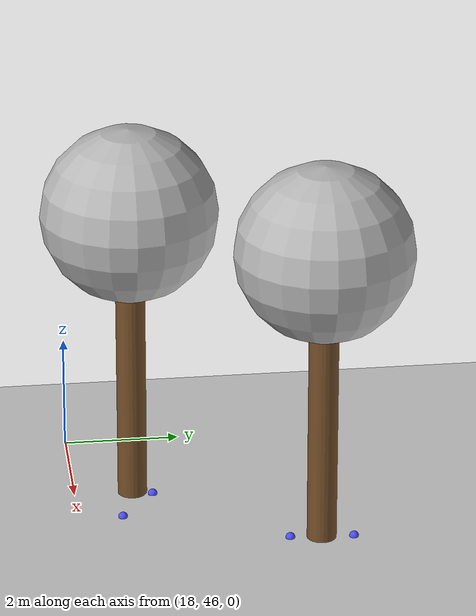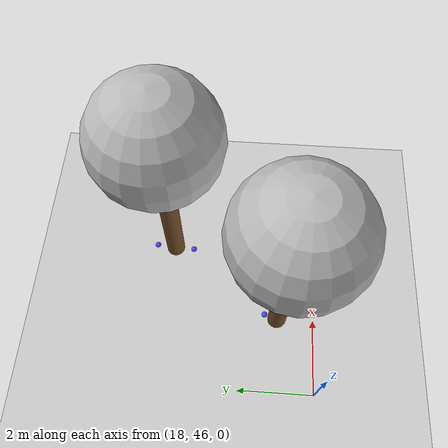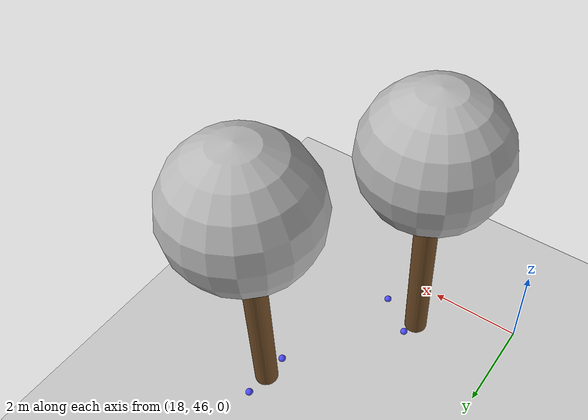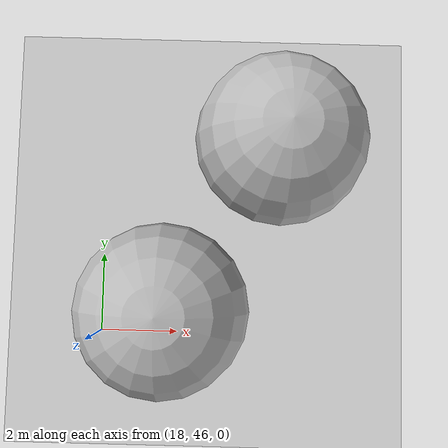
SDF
<sdf version="1.7">
 <world name="default">
  <model name="ground_plane">
   <static>1</static>
   <link name="link">
    <collision name="collision">
     <geometry><plane><normal>0 0 1</normal><size>100 100</size></plane></geometry>
     <surface>
      <contact><collide_bitmask>65535</collide_bitmask></contact>
      <friction><ode><mu>100</mu><mu2>50</mu2></ode></friction>
     </surface>
    </collision>
    <visual name="visual">
     <cast_shadows>0</cast_shadows>
     <geometry><plane><normal>0 0 1</normal><size>100 100</size></plane></geometry>
     <material>
      <script><uri>file://media/materials/scripts/gazebo.material</uri><name>Gazebo/Grey</name></script>
     </material>
    </visual>
   </link>
  </model>
  <model name="tree_simple_0">
   <static>1</static>
   <link name="link">
    <pose>0 0 0.1 0 -0 0</pose>
    <inertial>
     <mass>666</mass>
     <inertia>
      <ixx>0.0861167</ixx>
      <ixy>0</ixy>
      <ixz>0</ixz>
      <iyy>0.0861167</iyy>
      <iyz>0</iyz>
      <izz>0.0861167</izz>
     </inertia>
    </inertial>
    <collision name="collision_trunk">
     <pose>0 0 2 0 -0 0</pose>
     <geometry><cylinder><radius>0.25</radius><length>4</length></cylinder></geometry>
     <surface>
      <contact>
       <poissons_ratio>0.347</poissons_ratio>
       <elastic_modulus>8.8e+09</elastic_modulus>
       <ode><kp>100000</kp><kd>100</kd><max_vel>100</max_vel><min_depth>0.001</min_depth></ode>
      </contact>
      <friction>
       <torsional>
        <coefficient>1</coefficient>
        <use_patch_radius>0</use_patch_radius>
        <surface_radius>0.01</surface_radius>
       </torsional>
      </friction>
     </surface>
    </collision>
    <collision name="collision_treetop">
     <pose>0 0 5.2 0 -0 0</pose>
     <geometry><sphere><radius>1.5</radius></sphere></geometry>
     <surface>
      <contact>
       <poissons_ratio>0.347</poissons_ratio>
       <elastic_modulus>8.8e+09</elastic_modulus>
       <ode><kp>100000</kp><kd>100</kd><max_vel>100</max_vel><min_depth>0.001</min_depth></ode>
      </contact>
      <friction>
       <torsional>
        <coefficient>1</coefficient>
        <use_patch_radius>0</use_patch_radius>
        <surface_radius>0.01</surface_radius>
       </torsional>
      </friction>
     </surface>
    </collision>
    <visual name="trunk">
     <pose>0 0 2 0 -0 0</pose>
     <geometry><cylinder><radius>0.25</radius><length>4</length></cylinder></geometry>
     <material>
      <script>
       <uri>model://tree_simple/scripts</uri>
       <uri>model://tree_simple/materials/textures</uri>
       <name>TreeSimple/Trunk</name>
      </script>
     </material>
    </visual>
    <visual name="treetop">
     <pose>0 0 5.2 0 -0 0</pose>
     <geometry><sphere><radius>1.5</radius></sphere></geometry>
     <material>
      <script>
       <uri>model://tree_simple/scripts</uri>
       <uri>model://tree_simple/materials/textures</uri>
       <name>TreeSimple/Treetop</name>
      </script>
     </material>
    </visual>
   </link>
   <pose>22 50 -0.1 0 -0 0</pose>
  </model>
  <model name="tree_simple_2">
   <static>1</static>
   <link name="link">
    <pose>0 0 0.1 0 -0 0</pose>
    <inertial>
     <mass>666</mass>
     <inertia>
      <ixx>0.0861167</ixx>
      <ixy>0</ixy>
      <ixz>0</ixz>
      <iyy>0.0861167</iyy>
      <iyz>0</iyz>
      <izz>0.0861167</izz>
     </inertia>
    </inertial>
    <collision name="collision_trunk">
     <pose>0 0 2 0 -0 0</pose>
     <geometry><cylinder><radius>0.25</radius><length>4</length></cylinder></geometry>
     <surface>
      <contact>
       <poissons_ratio>0.347</poissons_ratio>
       <elastic_modulus>8.8e+09</elastic_modulus>
       <ode><kp>100000</kp><kd>100</kd><max_vel>100</max_vel><min_depth>0.001</min_depth></ode>
      </contact>
      <friction>
       <torsional>
        <coefficient>1</coefficient>
        <use_patch_radius>0</use_patch_radius>
        <surface_radius>0.01</surface_radius>
       </torsional>
      </friction>
     </surface>
    </collision>
    <collision name="collision_treetop">
     <pose>0 0 5.2 0 -0 0</pose>
     <geometry><sphere><radius>1.5</radius></sphere></geometry>
     <surface>
      <contact>
       <poissons_ratio>0.347</poissons_ratio>
       <elastic_modulus>8.8e+09</elastic_modulus>
       <ode><kp>100000</kp><kd>100</kd><max_vel>100</max_vel><min_depth>0.001</min_depth></ode>
      </contact>
      <friction>
       <torsional>
        <coefficient>1</coefficient>
        <use_patch_radius>0</use_patch_radius>
        <surface_radius>0.01</surface_radius>
       </torsional>
      </friction>
     </surface>
    </collision>
    <visual name="trunk">
     <pose>0 0 2 0 -0 0</pose>
     <geometry><cylinder><radius>0.25</radius><length>4</length></cylinder></geometry>
     <material>
      <script>
       <uri>model://tree_simple/scripts</uri>
       <uri>model://tree_simple/materials/textures</uri>
       <name>TreeSimple/Trunk</name>
      </script>
     </material>
    </visual>
    <visual name="treetop">
     <pose>0 0 5.2 0 -0 0</pose>
     <geometry><sphere><radius>1.5</radius></sphere></geometry>
     <material>
      <script>
       <uri>model://tree_simple/scripts</uri>
       <uri>model://tree_simple/materials/textures</uri>
       <name>TreeSimple/Treetop</name>
      </script>
     </material>
    </visual>
   </link>
   <pose>20 47 -0.1 0 -0 0</pose>
  </model>
  <model name="seed_blue_0">
   <link name="link">
    <inertial>
     <mass>1</mass>
     <inertia><ixx>0.1</ixx><ixy>0</ixy><ixz>0</ixz><iyy>0.1</iyy><iyz>0</iyz><izz>0.1</izz></inertia>
    </inertial>
    <visual name="visual">
     <geometry><sphere><radius>0.08</radius></sphere></geometry>
     <material>
      <script><name>Gazebo/Grey</name><uri>file://media/materials/scripts/gazebo.material</uri></script>
      <shader type="pixel"><normal_map>__default__</normal_map></shader>
      <ambient>0.3 0.3 1 1</ambient>
      <diffuse>0.7 0.7 0.7 1</diffuse>
      <specular>0.01 0.01 0.01 1</specular>
      <emissive>0 0 0 1</emissive>
     </material>
    </visual>
    <collision name="collision">
     <geometry><sphere><radius>0.0005</radius></sphere></geometry>
     <surface>
      <friction>
       <ode><mu>1</mu><mu2>1</mu2><fdir1>0 0 0</fdir1><slip1>0</slip1><slip2>0</slip2></ode>
       <torsional>
        <coefficient>1</coefficient>
        <patch_radius>0</patch_radius>
        <surface_radius>0</surface_radius>
        <use_patch_radius>1</use_patch_radius>
        <ode><slip>0</slip></ode>
       </torsional>
      </friction>
      <bounce><restitution_coefficient>0</restitution_coefficient><threshold>1e+06</threshold></bounce>
      <contact>
       <collide_without_contact>0</collide_without_contact>
       <collide_without_contact_bitmask>1</collide_without_contact_bitmask>
       <collide_bitmask>1</collide_bitmask>
       <ode>
        <soft_cfm>0</soft_cfm>
        <soft_erp>0.2</soft_erp>
        <kp>1e+13</kp>
        <kd>1</kd>
        <max_vel>0.01</max_vel>
        <min_depth>0</min_depth>
       </ode>
       <bullet>
        <split_impulse>1</split_impulse>
        <split_impulse_penetration_threshold>-0.01</split_impulse_penetration_threshold>
        <soft_cfm>0</soft_cfm>
        <soft_erp>0.2</soft_erp>
        <kp>1e+13</kp>
        <kd>1</kd>
       </bullet>
      </contact>
     </surface>
    </collision>
   </link>
   <static>0</static>
   <pose>22.0494 50.5442 0.0005 0 -0 0</pose>
  </model>
  <model name="seed_blue_2">
   <link name="link">
    <inertial>
     <mass>1</mass>
     <inertia><ixx>0.1</ixx><ixy>0</ixy><ixz>0</ixz><iyy>0.1</iyy><iyz>0</iyz><izz>0.1</izz></inertia>
    </inertial>
    <visual name="visual">
     <geometry><sphere><radius>0.08</radius></sphere></geometry>
     <material>
      <script><name>Gazebo/Grey</name><uri>file://media/materials/scripts/gazebo.material</uri></script>
      <shader type="pixel"><normal_map>__default__</normal_map></shader>
      <ambient>0.3 0.3 1 1</ambient>
      <diffuse>0.7 0.7 0.7 1</diffuse>
      <specular>0.01 0.01 0.01 1</specular>
      <emissive>0 0 0 1</emissive>
     </material>
    </visual>
    <collision name="collision">
     <geometry><sphere><radius>0.0005</radius></sphere></geometry>
     <surface>
      <friction>
       <ode><mu>1</mu><mu2>1</mu2><fdir1>0 0 0</fdir1><slip1>0</slip1><slip2>0</slip2></ode>
       <torsional>
        <coefficient>1</coefficient>
        <patch_radius>0</patch_radius>
        <surface_radius>0</surface_radius>
        <use_patch_radius>1</use_patch_radius>
        <ode><slip>0</slip></ode>
       </torsional>
      </friction>
      <bounce><restitution_coefficient>0</restitution_coefficient><threshold>1e+06</threshold></bounce>
      <contact>
       <collide_without_contact>0</collide_without_contact>
       <collide_without_contact_bitmask>1</collide_without_contact_bitmask>
       <collide_bitmask>1</collide_bitmask>
       <ode>
        <soft_cfm>0</soft_cfm>
        <soft_erp>0.2</soft_erp>
        <kp>1e+13</kp>
        <kd>1</kd>
        <max_vel>0.01</max_vel>
        <min_depth>0</min_depth>
       </ode>
       <bullet>
        <split_impulse>1</split_impulse>
        <split_impulse_penetration_threshold>-0.01</split_impulse_penetration_threshold>
        <soft_cfm>0</soft_cfm>
        <soft_erp>0.2</soft_erp>
        <kp>1e+13</kp>
        <kd>1</kd>
       </bullet>
      </contact>
     </surface>
    </collision>
   </link>
   <static>0</static>
   <pose>21.977 49.4734 0.0005 0 -0 0</pose>
  </model>
  <model name="seed_blue_8">
   <link name="link">
    <inertial>
     <mass>1</mass>
     <inertia><ixx>0.1</ixx><ixy>0</ixy><ixz>0</ixz><iyy>0.1</iyy><iyz>0</iyz><izz>0.1</izz></inertia>
    </inertial>
    <visual name="visual">
     <geometry><sphere><radius>0.08</radius></sphere></geometry>
     <material>
      <script><name>Gazebo/Grey</name><uri>file://media/materials/scripts/gazebo.material</uri></script>
      <shader type="pixel"><normal_map>__default__</normal_map></shader>
      <ambient>0.3 0.3 1 1</ambient>
      <diffuse>0.7 0.7 0.7 1</diffuse>
      <specular>0.01 0.01 0.01 1</specular>
      <emissive>0 0 0 1</emissive>
     </material>
    </visual>
    <collision name="collision">
     <geometry><sphere><radius>0.0005</radius></sphere></geometry>
     <surface>
      <friction>
       <ode><mu>1</mu><mu2>1</mu2><fdir1>0 0 0</fdir1><slip1>0</slip1><slip2>0</slip2></ode>
       <torsional>
        <coefficient>1</coefficient>
        <patch_radius>0</patch_radius>
        <surface_radius>0</surface_radius>
        <use_patch_radius>1</use_patch_radius>
        <ode><slip>0</slip></ode>
       </torsional>
      </friction>
      <bounce><restitution_coefficient>0</restitution_coefficient><threshold>1e+06</threshold></bounce>
      <contact>
       <collide_without_contact>0</collide_without_contact>
       <collide_without_contact_bitmask>1</collide_without_contact_bitmask>
       <collide_bitmask>1</collide_bitmask>
       <ode>
        <soft_cfm>0</soft_cfm>
        <soft_erp>0.2</soft_erp>
        <kp>1e+13</kp>
        <kd>1</kd>
        <max_vel>0.01</max_vel>
        <min_depth>0</min_depth>
       </ode>
       <bullet>
        <split_impulse>1</split_impulse>
        <split_impulse_penetration_threshold>-0.01</split_impulse_penetration_threshold>
        <soft_cfm>0</soft_cfm>
        <soft_erp>0.2</soft_erp>
        <kp>1e+13</kp>
        <kd>1</kd>
       </bullet>
      </contact>
     </surface>
    </collision>
   </link>
   <static>0</static>
   <pose>20.1071 47.3386 0.0005 0 -0 0</pose>
  </model>
  <model name="seed_blue_11">
   <link name="link">
    <inertial>
     <mass>1</mass>
     <inertia><ixx>0.1</ixx><ixy>0</ixy><ixz>0</ixz><iyy>0.1</iyy><iyz>0</iyz><izz>0.1</izz></inertia>
    </inertial>
    <visual name="visual">
     <geometry><sphere><radius>0.08</radius></sphere></geometry>
     <material>
      <script><name>Gazebo/Grey</name><uri>file://media/materials/scripts/gazebo.material</uri></script>
      <shader type="pixel"><normal_map>__default__</normal_map></shader>
      <ambient>0.3 0.3 1 1</ambient>
      <diffuse>0.7 0.7 0.7 1</diffuse>
      <specular>0.01 0.01 0.01 1</specular>
      <emissive>0 0 0 1</emissive>
     </material>
    </visual>
    <collision name="collision">
     <geometry><sphere><radius>0.0005</radius></sphere></geometry>
     <surface>
      <friction>
       <ode><mu>1</mu><mu2>1</mu2><fdir1>0 0 0</fdir1><slip1>0</slip1><slip2>0</slip2></ode>
       <torsional>
        <coefficient>1</coefficient>
        <patch_radius>0</patch_radius>
        <surface_radius>0</surface_radius>
        <use_patch_radius>1</use_patch_radius>
        <ode><slip>0</slip></ode>
       </torsional>
      </friction>
      <bounce><restitution_coefficient>0</restitution_coefficient><threshold>1e+06</threshold></bounce>
      <contact>
       <collide_without_contact>0</collide_without_contact>
       <collide_without_contact_bitmask>1</collide_without_contact_bitmask>
       <collide_bitmask>1</collide_bitmask>
       <ode>
        <soft_cfm>0</soft_cfm>
        <soft_erp>0.2</soft_erp>
        <kp>1e+13</kp>
        <kd>1</kd>
        <max_vel>0.01</max_vel>
        <min_depth>0</min_depth>
       </ode>
       <bullet>
        <split_impulse>1</split_impulse>
        <split_impulse_penetration_threshold>-0.01</split_impulse_penetration_threshold>
        <soft_cfm>0</soft_cfm>
        <soft_erp>0.2</soft_erp>
        <kp>1e+13</kp>
        <kd>1</kd>
       </bullet>
      </contact>
     </surface>
    </collision>
   </link>
   <static>0</static>
   <pose>20.8994 46.7511 0.0005 0 -0 0</pose>
  </model>
 </world>
</sdf>
